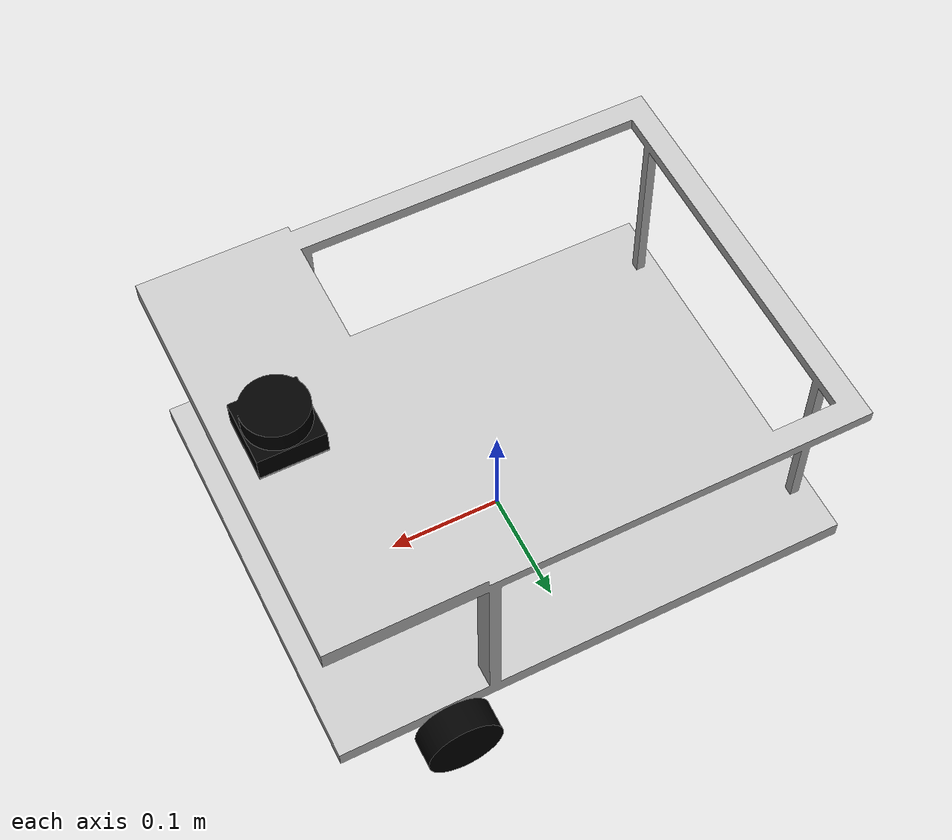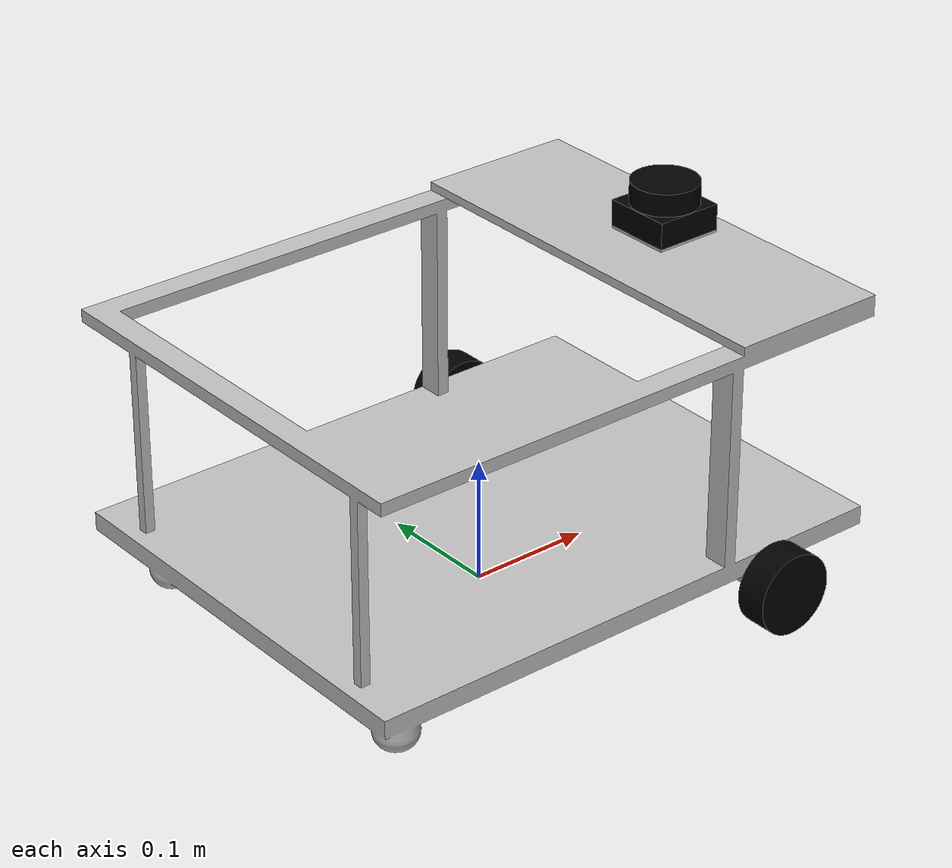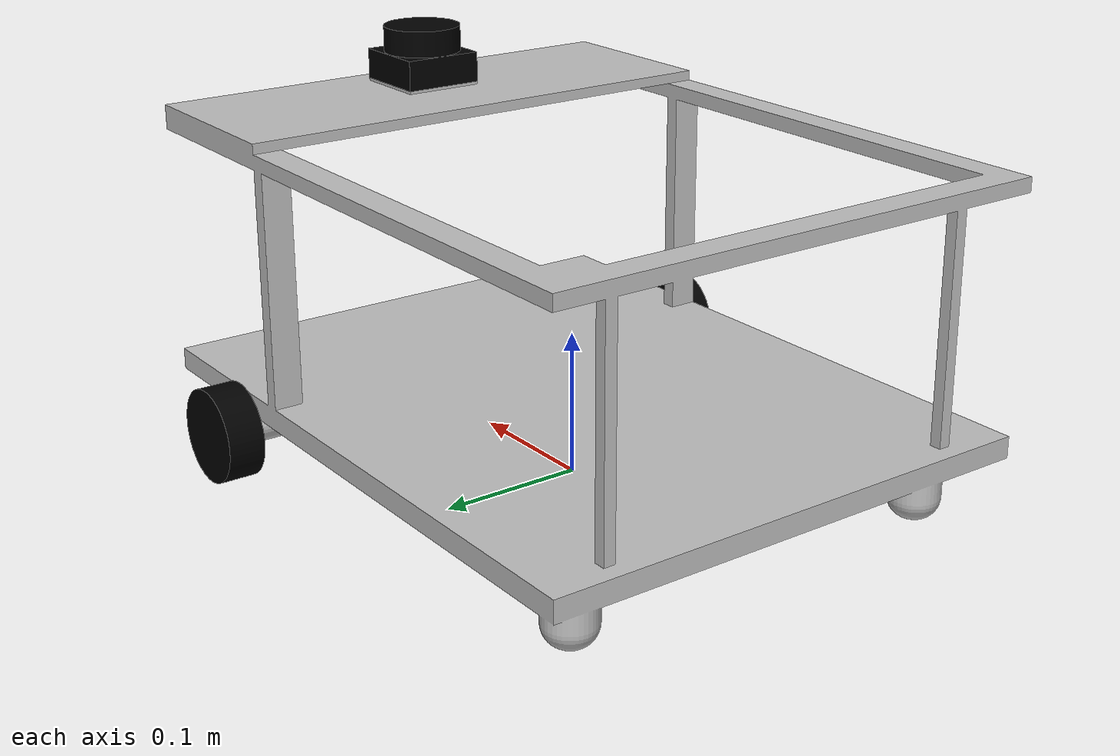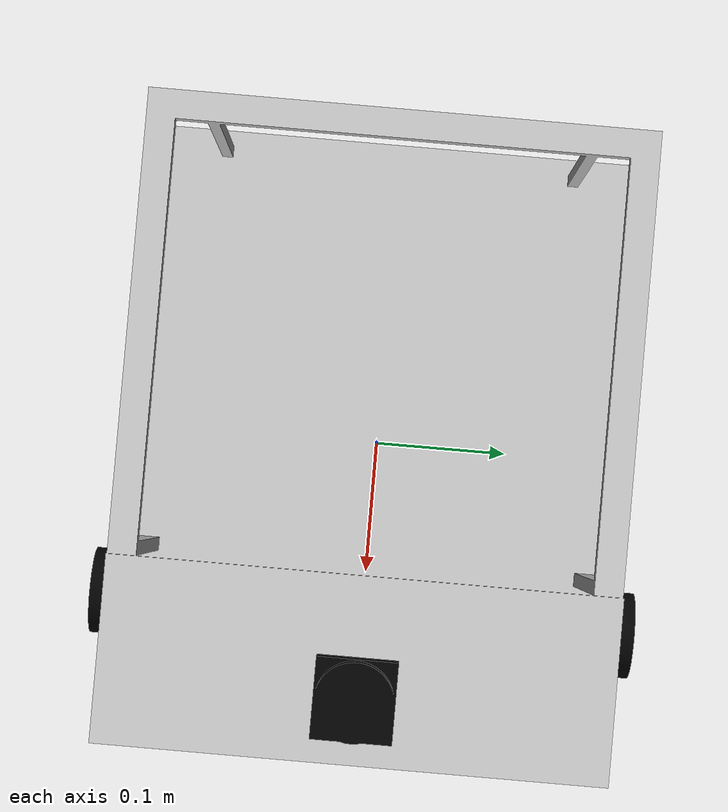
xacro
<?xml version="1.0"?>
<robot xmlns:xacro="http://www.ros.org/wiki/xacro" name="sweebo">

<xacro:include filename="$(find fp_darc)/urdf/materials.xacro" />

<link name="base_footprint"/>

<link name="base_link">
    <visual>
        <origin xyz="0.0 0.0 0.0" rpy="0.0 0.0 0.0"/>
        <geometry>
            <mesh filename="package://fp_darc/meshes/base_link.stl" scale="0.001 0.001 0.001" />
        </geometry>
        <material name="silver"/>
    </visual>
    <collision>
        <origin xyz="0.0 0.0 0.0" rpy="0.0 0.0 0.0"/>
        <geometry>
            <mesh filename="package://fp_darc/meshes/base_link.stl" scale="0.001 0.001 0.001" />
        </geometry>
    </collision>
</link>

<link name="right_wheel_link">
    <visual>
        <origin xyz="-0.13080 0.190 -0.0325" rpy="0.0 0.0 0.0"/>
        <geometry>
            <mesh filename="package://fp_darc/meshes/right_wheel_link.stl" scale="0.001 0.001 0.001" />
        </geometry>
        <material name="black"/>
    </visual>
    <collision>
        <origin xyz="-0.13080 0.190 -0.0325" rpy="0.0 0.0 0.0"/>
        <geometry>
            <mesh filename="package://fp_darc/meshes/right_wheel_link.stl" scale="0.001 0.001 0.001" />
        </geometry>
    </collision>
</link>

<link name="left_wheel_link">
    <visual>
        <origin xyz="-0.13080 -0.190 -0.0325" rpy="0.0 0.0 0.0"/>
        <geometry>
            <mesh filename="package://fp_darc/meshes/left_wheel_link.stl" scale="0.001 0.001 0.001" />
        </geometry>
        <material name="black"/>
    </visual>
    <collision>
        <origin xyz="-0.13080 -0.190 -0.0325" rpy="0.0 0.0 0.0"/>
        <geometry>
            <mesh filename="package://fp_darc/meshes/left_wheel_link.stl" scale="0.001 0.001 0.001" />
        </geometry>
    </collision>
</link>

<link name="lidar_link">
    <visual>
        <origin xyz="-0.1792 -0.0 -0.2689" rpy="0.0 0.0 0.0"/>
        <geometry>
            <mesh filename="package://fp_darc/meshes/lidar_link.stl" scale="0.001 0.001 0.001" />
        </geometry>
        <material name="black"/>
    </visual>
    <collision>
        <origin xyz="-0.1792 -0.0 -0.2689" rpy="0.0 0.0 0.0"/>
        <geometry>
            <mesh filename="package://fp_darc/meshes/lidar_link.stl" scale="0.001 0.001 0.001" />
        </geometry>
    </collision>
</link>

<joint name="base_joint" type="fixed">
    <origin xyz="0.0 0.0 0.0" rpy="0.0 0.0 0.0"/>
    <parent link="base_footprint"/>
    <child link="base_link"/>
</joint>

<joint name="right_wheel_joint" type="continuous">
    <origin xyz="0.13080 -0.190 0.0325" rpy="0.0 0.0 0.0"/>
    <parent link="base_link"/>
    <child link="right_wheel_link"/>
    <axis xyz="0.0 1.0 0.0"/>
</joint>

<joint name="left_wheel_joint" type="continuous">
    <origin xyz="0.13080 0.190 0.0325" rpy="0.0 0.0 0.0"/>
    <parent link="base_link"/>
    <child link="left_wheel_link"/>
    <axis xyz="0.0 1.0 0.0"/>
</joint>

<joint name="lidar_joint" type="fixed">
    <origin xyz="0.1792 0.0 0.2689" rpy="0.0 0.0 0.0"/>
    <parent link="base_link"/>
    <child link="lidar_link"/>
</joint>

</robot>

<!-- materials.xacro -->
<robot xmlns:xacro="http://www.ros.org/wiki/xacro" name="sweebo">

  <material name="black">
    <color rgba="0.0 0.0 0.0 1.0"/>
  </material>

  <material name="silver">
   <color rgba="0.75 0.75 0.75 1.0"/>
 </material>

</robot>
